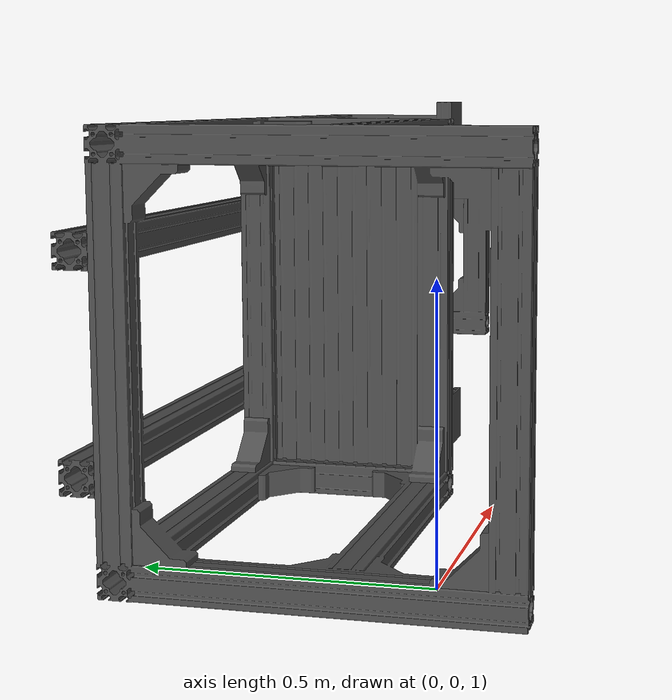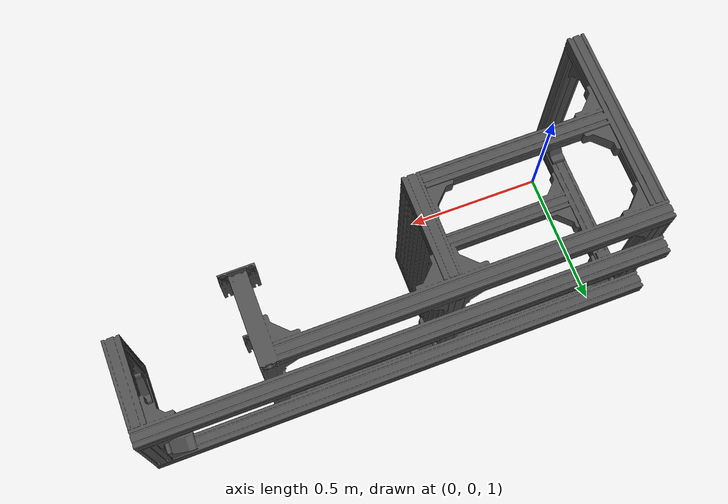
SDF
<?xml version='1.0'?>
<sdf version='1.6'>
  <model name='ur3e_base'>
    <link name='base'>
      <pose frame=''>0 0 0 0 0 3.1415</pose>
      <self_collide>0</self_collide>
      <kinematic>0</kinematic>
      <gravity>1</gravity>
      <inertial>
        <mass>50</mass>
        <pose frame=''>0 0 0 0 0 0</pose>
        <inertia>
          <ixx>1</ixx>
          <ixy>0</ixy>
          <ixz>0</ixz>
          <iyy>1</iyy>
          <iyz>0</iyz>
          <izz>1</izz>
        </inertia>
      </inertial>
      <visual name='base_visual'>
        <transparency> 0.1 </transparency>
        <geometry>
          <mesh>
            <uri>model://ur3e_base/meshes/ur3e_base.stl</uri>
            <scale>1 1 1</scale>
          </mesh>
        </geometry>
        <material>
          <script>
            <name>Gazebo/DarkGrey</name>
          </script>
        </material>
      </visual>
      <collision name='collision'>
        <max_contacts>10</max_contacts>
        <geometry>
          <mesh>
            <uri>model://ur3e_base/meshes/ur3e_base.stl</uri>
            <scale>1 1 1</scale>
          </mesh>
        </geometry>
        <surface>
          <friction>
            <ode>
              <mu>1</mu>
              <mu2>1</mu2>
              <fdir1>0 0 0</fdir1>
              <slip1>0.1</slip1>
              <slip2>0.1</slip2>
            </ode>
            <torsional>
              <coefficient>1</coefficient>
              <patch_radius>0</patch_radius>
              <surface_radius>0</surface_radius>
              <use_patch_radius>1</use_patch_radius>
              <ode>
                <slip>0</slip>
              </ode>
            </torsional>
          </friction>
          <bounce>
            <restitution_coefficient>0</restitution_coefficient>
            <threshold>1e+06</threshold>
          </bounce>
          <contact>
            <collide_without_contact>0</collide_without_contact>
            <collide_without_contact_bitmask>1</collide_without_contact_bitmask>
            <collide_bitmask>1</collide_bitmask>
            <ode>
              <soft_cfm>0</soft_cfm>
              <soft_erp>0.1</soft_erp>
              <kp>1e+13</kp>
              <kd>1</kd>
              <max_vel>0.01</max_vel>
              <min_depth>0</min_depth>
            </ode>
            <bullet>
              <split_impulse>1</split_impulse>
              <split_impulse_penetration_threshold>-0.01</split_impulse_penetration_threshold>
              <soft_cfm>0</soft_cfm>
              <soft_erp>0.1</soft_erp>
              <kp>1e+13</kp>
              <kd>1</kd>
            </bullet>
          </contact>
        </surface>
      </collision>
    </link>
    <static>1</static>
    <allow_auto_disable>1</allow_auto_disable>
  </model>
</sdf>
